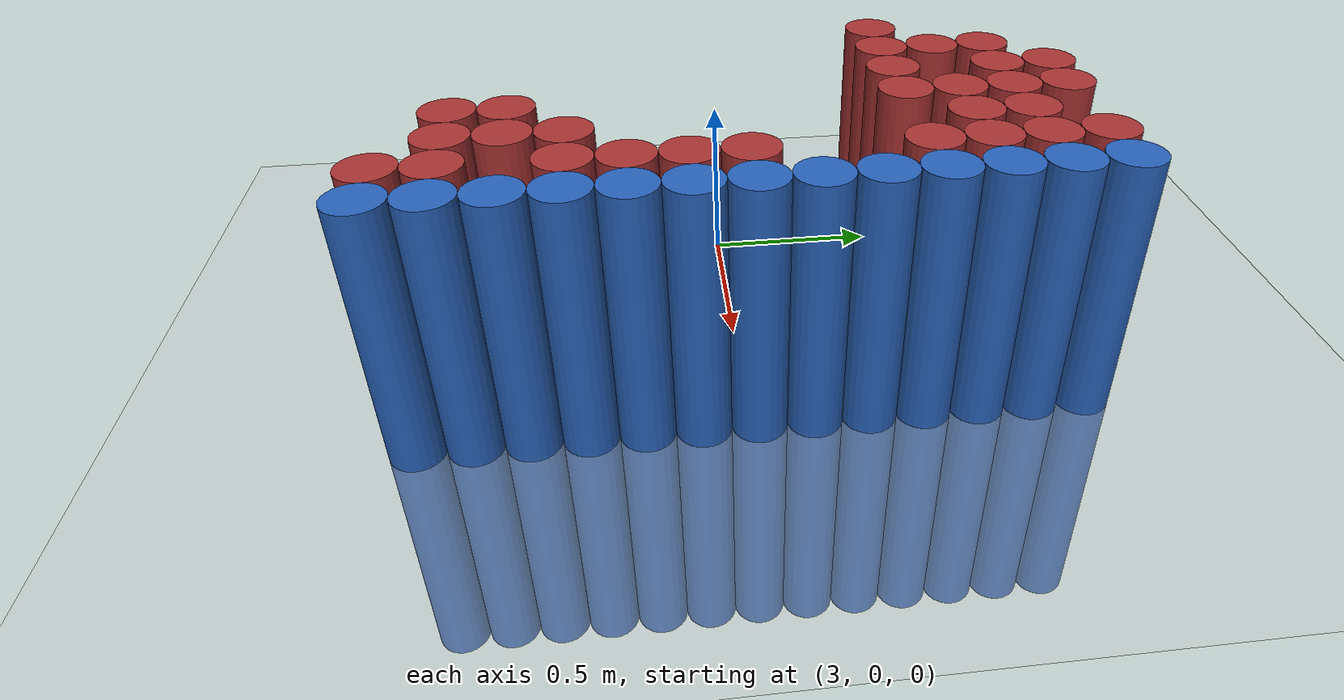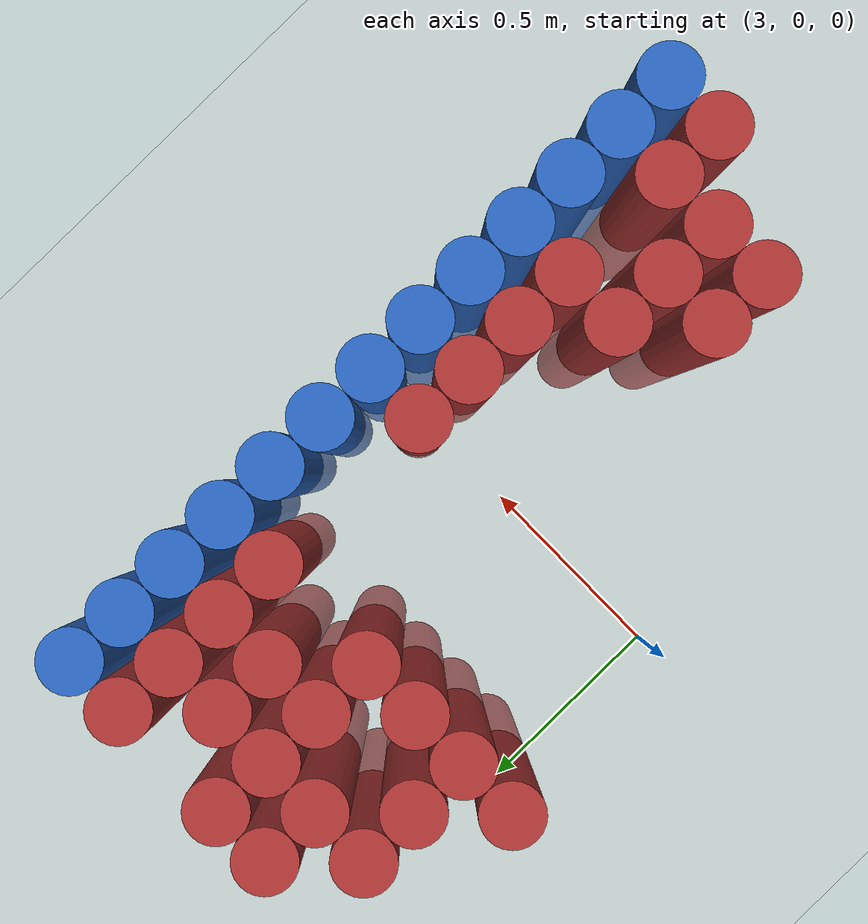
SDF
<sdf version="1.6">
 <world name="default">
  <model name="ground_plane">
   <static>1</static>
   <link name="link">
    <collision name="collision">
     <geometry><plane><normal>0 0 1</normal><size>100 100</size></plane></geometry>
     <surface><friction><ode><mu>100</mu><mu2>50</mu2></ode></friction></surface>
    </collision>
    <visual name="visual">
     <cast_shadows>0</cast_shadows>
     <geometry><plane><normal>0 0 1</normal><size>100 100</size></plane></geometry>
     <material>
      <script><uri>file://media/materials/scripts/gazebo.material</uri><name>Gazebo/Grey</name></script>
     </material>
    </visual>
   </link>
  </model>
  <model name="unit_cylinder_102">
   <static>1</static>
   <pose>3.925000 -0.875000 0.000000 0.000000 0.000000 0.000000</pose>
   <link name="link">
    <inertial>
     <mass>1</mass>
     <inertia><ixx>0.145833</ixx><ixy>0</ixy><ixz>0</ixz><iyy>0.145833</iyy><iyz>0</iyz><izz>0.125</izz></inertia>
    </inertial>
    <collision name="collision">
     <geometry><cylinder><radius>0.075000</radius><length>1.5</length></cylinder></geometry>
    </collision>
    <visual name="visual">
     <geometry><cylinder><radius>0.075000</radius><length>1.5</length></cylinder></geometry>
     <material>
      <ambient>0.152000 0.379000 0.720000 1</ambient>
      <diffuse>0.152000 0.379000 0.720000 1</diffuse>
     </material>
     <material>
      <script><name>Gazebo/Grey</name><uri>file://media/materials/scripts/gazebo.material</uri></script>
     </material>
    </visual>
   </link>
  </model>
  <model name="unit_cylinder_104">
   <static>1</static>
   <pose>3.925000 -0.725000 0.000000 0.000000 0.000000 0.000000</pose>
   <link name="link">
    <inertial>
     <mass>1</mass>
     <inertia><ixx>0.145833</ixx><ixy>0</ixy><ixz>0</ixz><iyy>0.145833</iyy><iyz>0</iyz><izz>0.125</izz></inertia>
    </inertial>
    <collision name="collision">
     <geometry><cylinder><radius>0.075000</radius><length>1.5</length></cylinder></geometry>
    </collision>
    <visual name="visual">
     <geometry><cylinder><radius>0.075000</radius><length>1.5</length></cylinder></geometry>
     <material>
      <ambient>0.152000 0.379000 0.720000 1</ambient>
      <diffuse>0.152000 0.379000 0.720000 1</diffuse>
     </material>
     <material>
      <script><name>Gazebo/Grey</name><uri>file://media/materials/scripts/gazebo.material</uri></script>
     </material>
    </visual>
   </link>
  </model>
  <model name="unit_cylinder_106">
   <static>1</static>
   <pose>3.925000 -0.575000 0.000000 0.000000 0.000000 0.000000</pose>
   <link name="link">
    <inertial>
     <mass>1</mass>
     <inertia><ixx>0.145833</ixx><ixy>0</ixy><ixz>0</ixz><iyy>0.145833</iyy><iyz>0</iyz><izz>0.125</izz></inertia>
    </inertial>
    <collision name="collision">
     <geometry><cylinder><radius>0.075000</radius><length>1.5</length></cylinder></geometry>
    </collision>
    <visual name="visual">
     <geometry><cylinder><radius>0.075000</radius><length>1.5</length></cylinder></geometry>
     <material>
      <ambient>0.152000 0.379000 0.720000 1</ambient>
      <diffuse>0.152000 0.379000 0.720000 1</diffuse>
     </material>
     <material>
      <script><name>Gazebo/Grey</name><uri>file://media/materials/scripts/gazebo.material</uri></script>
     </material>
    </visual>
   </link>
  </model>
  <model name="unit_cylinder_108">
   <static>1</static>
   <pose>3.925000 -0.425000 0.000000 0.000000 0.000000 0.000000</pose>
   <link name="link">
    <inertial>
     <mass>1</mass>
     <inertia><ixx>0.145833</ixx><ixy>0</ixy><ixz>0</ixz><iyy>0.145833</iyy><iyz>0</iyz><izz>0.125</izz></inertia>
    </inertial>
    <collision name="collision">
     <geometry><cylinder><radius>0.075000</radius><length>1.5</length></cylinder></geometry>
    </collision>
    <visual name="visual">
     <geometry><cylinder><radius>0.075000</radius><length>1.5</length></cylinder></geometry>
     <material>
      <ambient>0.152000 0.379000 0.720000 1</ambient>
      <diffuse>0.152000 0.379000 0.720000 1</diffuse>
     </material>
     <material>
      <script><name>Gazebo/Grey</name><uri>file://media/materials/scripts/gazebo.material</uri></script>
     </material>
    </visual>
   </link>
  </model>
  <model name="unit_cylinder_110">
   <static>1</static>
   <pose>3.925000 -0.275000 0.000000 0.000000 0.000000 0.000000</pose>
   <link name="link">
    <inertial>
     <mass>1</mass>
     <inertia><ixx>0.145833</ixx><ixy>0</ixy><ixz>0</ixz><iyy>0.145833</iyy><iyz>0</iyz><izz>0.125</izz></inertia>
    </inertial>
    <collision name="collision">
     <geometry><cylinder><radius>0.075000</radius><length>1.5</length></cylinder></geometry>
    </collision>
    <visual name="visual">
     <geometry><cylinder><radius>0.075000</radius><length>1.5</length></cylinder></geometry>
     <material>
      <ambient>0.152000 0.379000 0.720000 1</ambient>
      <diffuse>0.152000 0.379000 0.720000 1</diffuse>
     </material>
     <material>
      <script><name>Gazebo/Grey</name><uri>file://media/materials/scripts/gazebo.material</uri></script>
     </material>
    </visual>
   </link>
  </model>
  <model name="unit_cylinder_112">
   <static>1</static>
   <pose>3.925000 -0.125000 0.000000 0.000000 0.000000 0.000000</pose>
   <link name="link">
    <inertial>
     <mass>1</mass>
     <inertia><ixx>0.145833</ixx><ixy>0</ixy><ixz>0</ixz><iyy>0.145833</iyy><iyz>0</iyz><izz>0.125</izz></inertia>
    </inertial>
    <collision name="collision">
     <geometry><cylinder><radius>0.075000</radius><length>1.5</length></cylinder></geometry>
    </collision>
    <visual name="visual">
     <geometry><cylinder><radius>0.075000</radius><length>1.5</length></cylinder></geometry>
     <material>
      <ambient>0.152000 0.379000 0.720000 1</ambient>
      <diffuse>0.152000 0.379000 0.720000 1</diffuse>
     </material>
     <material>
      <script><name>Gazebo/Grey</name><uri>file://media/materials/scripts/gazebo.material</uri></script>
     </material>
    </visual>
   </link>
  </model>
  <model name="unit_cylinder_114">
   <static>1</static>
   <pose>3.925000 0.025000 0.000000 0.000000 0.000000 0.000000</pose>
   <link name="link">
    <inertial>
     <mass>1</mass>
     <inertia><ixx>0.145833</ixx><ixy>0</ixy><ixz>0</ixz><iyy>0.145833</iyy><iyz>0</iyz><izz>0.125</izz></inertia>
    </inertial>
    <collision name="collision">
     <geometry><cylinder><radius>0.075000</radius><length>1.5</length></cylinder></geometry>
    </collision>
    <visual name="visual">
     <geometry><cylinder><radius>0.075000</radius><length>1.5</length></cylinder></geometry>
     <material>
      <ambient>0.152000 0.379000 0.720000 1</ambient>
      <diffuse>0.152000 0.379000 0.720000 1</diffuse>
     </material>
     <material>
      <script><name>Gazebo/Grey</name><uri>file://media/materials/scripts/gazebo.material</uri></script>
     </material>
    </visual>
   </link>
  </model>
  <model name="unit_cylinder_116">
   <static>1</static>
   <pose>3.925000 0.175000 0.000000 0.000000 0.000000 0.000000</pose>
   <link name="link">
    <inertial>
     <mass>1</mass>
     <inertia><ixx>0.145833</ixx><ixy>0</ixy><ixz>0</ixz><iyy>0.145833</iyy><iyz>0</iyz><izz>0.125</izz></inertia>
    </inertial>
    <collision name="collision">
     <geometry><cylinder><radius>0.075000</radius><length>1.5</length></cylinder></geometry>
    </collision>
    <visual name="visual">
     <geometry><cylinder><radius>0.075000</radius><length>1.5</length></cylinder></geometry>
     <material>
      <ambient>0.152000 0.379000 0.720000 1</ambient>
      <diffuse>0.152000 0.379000 0.720000 1</diffuse>
     </material>
     <material>
      <script><name>Gazebo/Grey</name><uri>file://media/materials/scripts/gazebo.material</uri></script>
     </material>
    </visual>
   </link>
  </model>
  <model name="unit_cylinder_118">
   <static>1</static>
   <pose>3.925000 0.325000 0.000000 0.000000 0.000000 0.000000</pose>
   <link name="link">
    <inertial>
     <mass>1</mass>
     <inertia><ixx>0.145833</ixx><ixy>0</ixy><ixz>0</ixz><iyy>0.145833</iyy><iyz>0</iyz><izz>0.125</izz></inertia>
    </inertial>
    <collision name="collision">
     <geometry><cylinder><radius>0.075000</radius><length>1.5</length></cylinder></geometry>
    </collision>
    <visual name="visual">
     <geometry><cylinder><radius>0.075000</radius><length>1.5</length></cylinder></geometry>
     <material>
      <ambient>0.152000 0.379000 0.720000 1</ambient>
      <diffuse>0.152000 0.379000 0.720000 1</diffuse>
     </material>
     <material>
      <script><name>Gazebo/Grey</name><uri>file://media/materials/scripts/gazebo.material</uri></script>
     </material>
    </visual>
   </link>
  </model>
  <model name="unit_cylinder_120">
   <static>1</static>
   <pose>3.925000 0.475000 0.000000 0.000000 0.000000 0.000000</pose>
   <link name="link">
    <inertial>
     <mass>1</mass>
     <inertia><ixx>0.145833</ixx><ixy>0</ixy><ixz>0</ixz><iyy>0.145833</iyy><iyz>0</iyz><izz>0.125</izz></inertia>
    </inertial>
    <collision name="collision">
     <geometry><cylinder><radius>0.075000</radius><length>1.5</length></cylinder></geometry>
    </collision>
    <visual name="visual">
     <geometry><cylinder><radius>0.075000</radius><length>1.5</length></cylinder></geometry>
     <material>
      <ambient>0.152000 0.379000 0.720000 1</ambient>
      <diffuse>0.152000 0.379000 0.720000 1</diffuse>
     </material>
     <material>
      <script><name>Gazebo/Grey</name><uri>file://media/materials/scripts/gazebo.material</uri></script>
     </material>
    </visual>
   </link>
  </model>
  <model name="unit_cylinder_122">
   <static>1</static>
   <pose>3.925000 0.625000 0.000000 0.000000 0.000000 0.000000</pose>
   <link name="link">
    <inertial>
     <mass>1</mass>
     <inertia><ixx>0.145833</ixx><ixy>0</ixy><ixz>0</ixz><iyy>0.145833</iyy><iyz>0</iyz><izz>0.125</izz></inertia>
    </inertial>
    <collision name="collision">
     <geometry><cylinder><radius>0.075000</radius><length>1.5</length></cylinder></geometry>
    </collision>
    <visual name="visual">
     <geometry><cylinder><radius>0.075000</radius><length>1.5</length></cylinder></geometry>
     <material>
      <ambient>0.152000 0.379000 0.720000 1</ambient>
      <diffuse>0.152000 0.379000 0.720000 1</diffuse>
     </material>
     <material>
      <script><name>Gazebo/Grey</name><uri>file://media/materials/scripts/gazebo.material</uri></script>
     </material>
    </visual>
   </link>
  </model>
  <model name="unit_cylinder_124">
   <static>1</static>
   <pose>3.925000 0.775000 0.000000 0.000000 0.000000 0.000000</pose>
   <link name="link">
    <inertial>
     <mass>1</mass>
     <inertia><ixx>0.145833</ixx><ixy>0</ixy><ixz>0</ixz><iyy>0.145833</iyy><iyz>0</iyz><izz>0.125</izz></inertia>
    </inertial>
    <collision name="collision">
     <geometry><cylinder><radius>0.075000</radius><length>1.5</length></cylinder></geometry>
    </collision>
    <visual name="visual">
     <geometry><cylinder><radius>0.075000</radius><length>1.5</length></cylinder></geometry>
     <material>
      <ambient>0.152000 0.379000 0.720000 1</ambient>
      <diffuse>0.152000 0.379000 0.720000 1</diffuse>
     </material>
     <material>
      <script><name>Gazebo/Grey</name><uri>file://media/materials/scripts/gazebo.material</uri></script>
     </material>
    </visual>
   </link>
  </model>
  <model name="unit_cylinder_126">
   <static>1</static>
   <pose>3.925000 0.925000 0.000000 0.000000 0.000000 0.000000</pose>
   <link name="link">
    <inertial>
     <mass>1</mass>
     <inertia><ixx>0.145833</ixx><ixy>0</ixy><ixz>0</ixz><iyy>0.145833</iyy><iyz>0</iyz><izz>0.125</izz></inertia>
    </inertial>
    <collision name="collision">
     <geometry><cylinder><radius>0.075000</radius><length>1.5</length></cylinder></geometry>
    </collision>
    <visual name="visual">
     <geometry><cylinder><radius>0.075000</radius><length>1.5</length></cylinder></geometry>
     <material>
      <ambient>0.152000 0.379000 0.720000 1</ambient>
      <diffuse>0.152000 0.379000 0.720000 1</diffuse>
     </material>
     <material>
      <script><name>Gazebo/Grey</name><uri>file://media/materials/scripts/gazebo.material</uri></script>
     </material>
    </visual>
   </link>
  </model>
  <model name="unit_cylinder_340">
   <static>1</static>
   <pose>3.025000 0.475000 0.000000 0.000000 0.000000 0.000000</pose>
   <link name="link">
    <inertial>
     <mass>1</mass>
     <inertia><ixx>0.145833</ixx><ixy>0</ixy><ixz>0</ixz><iyy>0.145833</iyy><iyz>0</iyz><izz>0.125</izz></inertia>
    </inertial>
    <collision name="collision">
     <geometry><cylinder><radius>0.075000</radius><length>1.5</length></cylinder></geometry>
    </collision>
    <visual name="visual">
     <geometry><cylinder><radius>0.075000</radius><length>1.5</length></cylinder></geometry>
     <material>
      <ambient>0.648000 0.192000 0.192000 1</ambient>
      <diffuse>0.648000 0.192000 0.192000 1</diffuse>
     </material>
     <material>
      <script><name>Gazebo/Grey</name><uri>file://media/materials/scripts/gazebo.material</uri></script>
     </material>
    </visual>
   </link>
  </model>
  <model name="unit_cylinder_341">
   <static>1</static>
   <pose>3.175000 0.475000 0.000000 0.000000 0.000000 0.000000</pose>
   <link name="link">
    <inertial>
     <mass>1</mass>
     <inertia><ixx>0.145833</ixx><ixy>0</ixy><ixz>0</ixz><iyy>0.145833</iyy><iyz>0</iyz><izz>0.125</izz></inertia>
    </inertial>
    <collision name="collision">
     <geometry><cylinder><radius>0.075000</radius><length>1.5</length></cylinder></geometry>
    </collision>
    <visual name="visual">
     <geometry><cylinder><radius>0.075000</radius><length>1.5</length></cylinder></geometry>
     <material>
      <ambient>0.648000 0.192000 0.192000 1</ambient>
      <diffuse>0.648000 0.192000 0.192000 1</diffuse>
     </material>
     <material>
      <script><name>Gazebo/Grey</name><uri>file://media/materials/scripts/gazebo.material</uri></script>
     </material>
    </visual>
   </link>
  </model>
  <model name="unit_cylinder_342">
   <static>1</static>
   <pose>3.175000 0.625000 0.000000 0.000000 0.000000 0.000000</pose>
   <link name="link">
    <inertial>
     <mass>1</mass>
     <inertia><ixx>0.145833</ixx><ixy>0</ixy><ixz>0</ixz><iyy>0.145833</iyy><iyz>0</iyz><izz>0.125</izz></inertia>
    </inertial>
    <collision name="collision">
     <geometry><cylinder><radius>0.075000</radius><length>1.5</length></cylinder></geometry>
    </collision>
    <visual name="visual">
     <geometry><cylinder><radius>0.075000</radius><length>1.5</length></cylinder></geometry>
     <material>
      <ambient>0.648000 0.192000 0.192000 1</ambient>
      <diffuse>0.648000 0.192000 0.192000 1</diffuse>
     </material>
     <material>
      <script><name>Gazebo/Grey</name><uri>file://media/materials/scripts/gazebo.material</uri></script>
     </material>
    </visual>
   </link>
  </model>
  <model name="unit_cylinder_343">
   <static>1</static>
   <pose>3.175000 0.775000 0.000000 0.000000 0.000000 0.000000</pose>
   <link name="link">
    <inertial>
     <mass>1</mass>
     <inertia><ixx>0.145833</ixx><ixy>0</ixy><ixz>0</ixz><iyy>0.145833</iyy><iyz>0</iyz><izz>0.125</izz></inertia>
    </inertial>
    <collision name="collision">
     <geometry><cylinder><radius>0.075000</radius><length>1.5</length></cylinder></geometry>
    </collision>
    <visual name="visual">
     <geometry><cylinder><radius>0.075000</radius><length>1.5</length></cylinder></geometry>
     <material>
      <ambient>0.648000 0.192000 0.192000 1</ambient>
      <diffuse>0.648000 0.192000 0.192000 1</diffuse>
     </material>
     <material>
      <script><name>Gazebo/Grey</name><uri>file://media/materials/scripts/gazebo.material</uri></script>
     </material>
    </visual>
   </link>
  </model>
  <model name="unit_cylinder_344">
   <static>1</static>
   <pose>3.325000 0.475000 0.000000 0.000000 0.000000 0.000000</pose>
   <link name="link">
    <inertial>
     <mass>1</mass>
     <inertia><ixx>0.145833</ixx><ixy>0</ixy><ixz>0</ixz><iyy>0.145833</iyy><iyz>0</iyz><izz>0.125</izz></inertia>
    </inertial>
    <collision name="collision">
     <geometry><cylinder><radius>0.075000</radius><length>1.5</length></cylinder></geometry>
    </collision>
    <visual name="visual">
     <geometry><cylinder><radius>0.075000</radius><length>1.5</length></cylinder></geometry>
     <material>
      <ambient>0.648000 0.192000 0.192000 1</ambient>
      <diffuse>0.648000 0.192000 0.192000 1</diffuse>
     </material>
     <material>
      <script><name>Gazebo/Grey</name><uri>file://media/materials/scripts/gazebo.material</uri></script>
     </material>
    </visual>
   </link>
  </model>
  <model name="unit_cylinder_345">
   <static>1</static>
   <pose>3.325000 0.775000 0.000000 0.000000 0.000000 0.000000</pose>
   <link name="link">
    <inertial>
     <mass>1</mass>
     <inertia><ixx>0.145833</ixx><ixy>0</ixy><ixz>0</ixz><iyy>0.145833</iyy><iyz>0</iyz><izz>0.125</izz></inertia>
    </inertial>
    <collision name="collision">
     <geometry><cylinder><radius>0.075000</radius><length>1.5</length></cylinder></geometry>
    </collision>
    <visual name="visual">
     <geometry><cylinder><radius>0.075000</radius><length>1.5</length></cylinder></geometry>
     <material>
      <ambient>0.648000 0.192000 0.192000 1</ambient>
      <diffuse>0.648000 0.192000 0.192000 1</diffuse>
     </material>
     <material>
      <script><name>Gazebo/Grey</name><uri>file://media/materials/scripts/gazebo.material</uri></script>
     </material>
    </visual>
   </link>
  </model>
  <model name="unit_cylinder_346">
   <static>1</static>
   <pose>3.325000 0.925000 0.000000 0.000000 0.000000 0.000000</pose>
   <link name="link">
    <inertial>
     <mass>1</mass>
     <inertia><ixx>0.145833</ixx><ixy>0</ixy><ixz>0</ixz><iyy>0.145833</iyy><iyz>0</iyz><izz>0.125</izz></inertia>
    </inertial>
    <collision name="collision">
     <geometry><cylinder><radius>0.075000</radius><length>1.5</length></cylinder></geometry>
    </collision>
    <visual name="visual">
     <geometry><cylinder><radius>0.075000</radius><length>1.5</length></cylinder></geometry>
     <material>
      <ambient>0.648000 0.192000 0.192000 1</ambient>
      <diffuse>0.648000 0.192000 0.192000 1</diffuse>
     </material>
     <material>
      <script><name>Gazebo/Grey</name><uri>file://media/materials/scripts/gazebo.material</uri></script>
     </material>
    </visual>
   </link>
  </model>
  <model name="unit_cylinder_347">
   <static>1</static>
   <pose>3.475000 -0.725000 0.000000 0.000000 0.000000 0.000000</pose>
   <link name="link">
    <inertial>
     <mass>1</mass>
     <inertia><ixx>0.145833</ixx><ixy>0</ixy><ixz>0</ixz><iyy>0.145833</iyy><iyz>0</iyz><izz>0.125</izz></inertia>
    </inertial>
    <collision name="collision">
     <geometry><cylinder><radius>0.075000</radius><length>1.5</length></cylinder></geometry>
    </collision>
    <visual name="visual">
     <geometry><cylinder><radius>0.075000</radius><length>1.5</length></cylinder></geometry>
     <material>
      <ambient>0.648000 0.192000 0.192000 1</ambient>
      <diffuse>0.648000 0.192000 0.192000 1</diffuse>
     </material>
     <material>
      <script><name>Gazebo/Grey</name><uri>file://media/materials/scripts/gazebo.material</uri></script>
     </material>
    </visual>
   </link>
  </model>
  <model name="unit_cylinder_348">
   <static>1</static>
   <pose>3.475000 -0.575000 0.000000 0.000000 0.000000 0.000000</pose>
   <link name="link">
    <inertial>
     <mass>1</mass>
     <inertia><ixx>0.145833</ixx><ixy>0</ixy><ixz>0</ixz><iyy>0.145833</iyy><iyz>0</iyz><izz>0.125</izz></inertia>
    </inertial>
    <collision name="collision">
     <geometry><cylinder><radius>0.075000</radius><length>1.5</length></cylinder></geometry>
    </collision>
    <visual name="visual">
     <geometry><cylinder><radius>0.075000</radius><length>1.5</length></cylinder></geometry>
     <material>
      <ambient>0.648000 0.192000 0.192000 1</ambient>
      <diffuse>0.648000 0.192000 0.192000 1</diffuse>
     </material>
     <material>
      <script><name>Gazebo/Grey</name><uri>file://media/materials/scripts/gazebo.material</uri></script>
     </material>
    </visual>
   </link>
  </model>
  <model name="unit_cylinder_349">
   <static>1</static>
   <pose>3.475000 0.475000 0.000000 0.000000 0.000000 0.000000</pose>
   <link name="link">
    <inertial>
     <mass>1</mass>
     <inertia><ixx>0.145833</ixx><ixy>0</ixy><ixz>0</ixz><iyy>0.145833</iyy><iyz>0</iyz><izz>0.125</izz></inertia>
    </inertial>
    <collision name="collision">
     <geometry><cylinder><radius>0.075000</radius><length>1.5</length></cylinder></geometry>
    </collision>
    <visual name="visual">
     <geometry><cylinder><radius>0.075000</radius><length>1.5</length></cylinder></geometry>
     <material>
      <ambient>0.648000 0.192000 0.192000 1</ambient>
      <diffuse>0.648000 0.192000 0.192000 1</diffuse>
     </material>
     <material>
      <script><name>Gazebo/Grey</name><uri>file://media/materials/scripts/gazebo.material</uri></script>
     </material>
    </visual>
   </link>
  </model>
  <model name="unit_cylinder_350">
   <static>1</static>
   <pose>3.475000 0.625000 0.000000 0.000000 0.000000 0.000000</pose>
   <link name="link">
    <inertial>
     <mass>1</mass>
     <inertia><ixx>0.145833</ixx><ixy>0</ixy><ixz>0</ixz><iyy>0.145833</iyy><iyz>0</iyz><izz>0.125</izz></inertia>
    </inertial>
    <collision name="collision">
     <geometry><cylinder><radius>0.075000</radius><length>1.5</length></cylinder></geometry>
    </collision>
    <visual name="visual">
     <geometry><cylinder><radius>0.075000</radius><length>1.5</length></cylinder></geometry>
     <material>
      <ambient>0.648000 0.192000 0.192000 1</ambient>
      <diffuse>0.648000 0.192000 0.192000 1</diffuse>
     </material>
     <material>
      <script><name>Gazebo/Grey</name><uri>file://media/materials/scripts/gazebo.material</uri></script>
     </material>
    </visual>
   </link>
  </model>
  <model name="unit_cylinder_351">
   <static>1</static>
   <pose>3.475000 0.775000 0.000000 0.000000 0.000000 0.000000</pose>
   <link name="link">
    <inertial>
     <mass>1</mass>
     <inertia><ixx>0.145833</ixx><ixy>0</ixy><ixz>0</ixz><iyy>0.145833</iyy><iyz>0</iyz><izz>0.125</izz></inertia>
    </inertial>
    <collision name="collision">
     <geometry><cylinder><radius>0.075000</radius><length>1.5</length></cylinder></geometry>
    </collision>
    <visual name="visual">
     <geometry><cylinder><radius>0.075000</radius><length>1.5</length></cylinder></geometry>
     <material>
      <ambient>0.648000 0.192000 0.192000 1</ambient>
      <diffuse>0.648000 0.192000 0.192000 1</diffuse>
     </material>
     <material>
      <script><name>Gazebo/Grey</name><uri>file://media/materials/scripts/gazebo.material</uri></script>
     </material>
    </visual>
   </link>
  </model>
  <model name="unit_cylinder_352">
   <static>1</static>
   <pose>3.475000 0.925000 0.000000 0.000000 0.000000 0.000000</pose>
   <link name="link">
    <inertial>
     <mass>1</mass>
     <inertia><ixx>0.145833</ixx><ixy>0</ixy><ixz>0</ixz><iyy>0.145833</iyy><iyz>0</iyz><izz>0.125</izz></inertia>
    </inertial>
    <collision name="collision">
     <geometry><cylinder><radius>0.075000</radius><length>1.5</length></cylinder></geometry>
    </collision>
    <visual name="visual">
     <geometry><cylinder><radius>0.075000</radius><length>1.5</length></cylinder></geometry>
     <material>
      <ambient>0.648000 0.192000 0.192000 1</ambient>
      <diffuse>0.648000 0.192000 0.192000 1</diffuse>
     </material>
     <material>
      <script><name>Gazebo/Grey</name><uri>file://media/materials/scripts/gazebo.material</uri></script>
     </material>
    </visual>
   </link>
  </model>
  <model name="unit_cylinder_353">
   <static>1</static>
   <pose>3.625000 -0.725000 0.000000 0.000000 0.000000 0.000000</pose>
   <link name="link">
    <inertial>
     <mass>1</mass>
     <inertia><ixx>0.145833</ixx><ixy>0</ixy><ixz>0</ixz><iyy>0.145833</iyy><iyz>0</iyz><izz>0.125</izz></inertia>
    </inertial>
    <collision name="collision">
     <geometry><cylinder><radius>0.075000</radius><length>1.5</length></cylinder></geometry>
    </collision>
    <visual name="visual">
     <geometry><cylinder><radius>0.075000</radius><length>1.5</length></cylinder></geometry>
     <material>
      <ambient>0.648000 0.192000 0.192000 1</ambient>
      <diffuse>0.648000 0.192000 0.192000 1</diffuse>
     </material>
     <material>
      <script><name>Gazebo/Grey</name><uri>file://media/materials/scripts/gazebo.material</uri></script>
     </material>
    </visual>
   </link>
  </model>
  <model name="unit_cylinder_354">
   <static>1</static>
   <pose>3.625000 -0.575000 0.000000 0.000000 0.000000 0.000000</pose>
   <link name="link">
    <inertial>
     <mass>1</mass>
     <inertia><ixx>0.145833</ixx><ixy>0</ixy><ixz>0</ixz><iyy>0.145833</iyy><iyz>0</iyz><izz>0.125</izz></inertia>
    </inertial>
    <collision name="collision">
     <geometry><cylinder><radius>0.075000</radius><length>1.5</length></cylinder></geometry>
    </collision>
    <visual name="visual">
     <geometry><cylinder><radius>0.075000</radius><length>1.5</length></cylinder></geometry>
     <material>
      <ambient>0.648000 0.192000 0.192000 1</ambient>
      <diffuse>0.648000 0.192000 0.192000 1</diffuse>
     </material>
     <material>
      <script><name>Gazebo/Grey</name><uri>file://media/materials/scripts/gazebo.material</uri></script>
     </material>
    </visual>
   </link>
  </model>
  <model name="unit_cylinder_355">
   <static>1</static>
   <pose>3.625000 -0.425000 0.000000 0.000000 0.000000 0.000000</pose>
   <link name="link">
    <inertial>
     <mass>1</mass>
     <inertia><ixx>0.145833</ixx><ixy>0</ixy><ixz>0</ixz><iyy>0.145833</iyy><iyz>0</iyz><izz>0.125</izz></inertia>
    </inertial>
    <collision name="collision">
     <geometry><cylinder><radius>0.075000</radius><length>1.5</length></cylinder></geometry>
    </collision>
    <visual name="visual">
     <geometry><cylinder><radius>0.075000</radius><length>1.5</length></cylinder></geometry>
     <material>
      <ambient>0.648000 0.192000 0.192000 1</ambient>
      <diffuse>0.648000 0.192000 0.192000 1</diffuse>
     </material>
     <material>
      <script><name>Gazebo/Grey</name><uri>file://media/materials/scripts/gazebo.material</uri></script>
     </material>
    </visual>
   </link>
  </model>
  <model name="unit_cylinder_356">
   <static>1</static>
   <pose>3.625000 0.625000 0.000000 0.000000 0.000000 0.000000</pose>
   <link name="link">
    <inertial>
     <mass>1</mass>
     <inertia><ixx>0.145833</ixx><ixy>0</ixy><ixz>0</ixz><iyy>0.145833</iyy><iyz>0</iyz><izz>0.125</izz></inertia>
    </inertial>
    <collision name="collision">
     <geometry><cylinder><radius>0.075000</radius><length>1.5</length></cylinder></geometry>
    </collision>
    <visual name="visual">
     <geometry><cylinder><radius>0.075000</radius><length>1.5</length></cylinder></geometry>
     <material>
      <ambient>0.648000 0.192000 0.192000 1</ambient>
      <diffuse>0.648000 0.192000 0.192000 1</diffuse>
     </material>
     <material>
      <script><name>Gazebo/Grey</name><uri>file://media/materials/scripts/gazebo.material</uri></script>
     </material>
    </visual>
   </link>
  </model>
  <model name="unit_cylinder_357">
   <static>1</static>
   <pose>3.625000 0.775000 0.000000 0.000000 0.000000 0.000000</pose>
   <link name="link">
    <inertial>
     <mass>1</mass>
     <inertia><ixx>0.145833</ixx><ixy>0</ixy><ixz>0</ixz><iyy>0.145833</iyy><iyz>0</iyz><izz>0.125</izz></inertia>
    </inertial>
    <collision name="collision">
     <geometry><cylinder><radius>0.075000</radius><length>1.5</length></cylinder></geometry>
    </collision>
    <visual name="visual">
     <geometry><cylinder><radius>0.075000</radius><length>1.5</length></cylinder></geometry>
     <material>
      <ambient>0.648000 0.192000 0.192000 1</ambient>
      <diffuse>0.648000 0.192000 0.192000 1</diffuse>
     </material>
     <material>
      <script><name>Gazebo/Grey</name><uri>file://media/materials/scripts/gazebo.material</uri></script>
     </material>
    </visual>
   </link>
  </model>
  <model name="unit_cylinder_362">
   <static>1</static>
   <pose>3.775000 -0.875000 0.000000 0.000000 0.000000 0.000000</pose>
   <link name="link">
    <inertial>
     <mass>1</mass>
     <inertia><ixx>0.145833</ixx><ixy>0</ixy><ixz>0</ixz><iyy>0.145833</iyy><iyz>0</iyz><izz>0.125</izz></inertia>
    </inertial>
    <collision name="collision">
     <geometry><cylinder><radius>0.075000</radius><length>1.5</length></cylinder></geometry>
    </collision>
    <visual name="visual">
     <geometry><cylinder><radius>0.075000</radius><length>1.5</length></cylinder></geometry>
     <material>
      <ambient>0.648000 0.192000 0.192000 1</ambient>
      <diffuse>0.648000 0.192000 0.192000 1</diffuse>
     </material>
     <material>
      <script><name>Gazebo/Grey</name><uri>file://media/materials/scripts/gazebo.material</uri></script>
     </material>
    </visual>
   </link>
  </model>
  <model name="unit_cylinder_363">
   <static>1</static>
   <pose>3.775000 -0.725000 0.000000 0.000000 0.000000 0.000000</pose>
   <link name="link">
    <inertial>
     <mass>1</mass>
     <inertia><ixx>0.145833</ixx><ixy>0</ixy><ixz>0</ixz><iyy>0.145833</iyy><iyz>0</iyz><izz>0.125</izz></inertia>
    </inertial>
    <collision name="collision">
     <geometry><cylinder><radius>0.075000</radius><length>1.5</length></cylinder></geometry>
    </collision>
    <visual name="visual">
     <geometry><cylinder><radius>0.075000</radius><length>1.5</length></cylinder></geometry>
     <material>
      <ambient>0.648000 0.192000 0.192000 1</ambient>
      <diffuse>0.648000 0.192000 0.192000 1</diffuse>
     </material>
     <material>
      <script><name>Gazebo/Grey</name><uri>file://media/materials/scripts/gazebo.material</uri></script>
     </material>
    </visual>
   </link>
  </model>
  <model name="unit_cylinder_364">
   <static>1</static>
   <pose>3.775000 -0.425000 0.000000 0.000000 0.000000 0.000000</pose>
   <link name="link">
    <inertial>
     <mass>1</mass>
     <inertia><ixx>0.145833</ixx><ixy>0</ixy><ixz>0</ixz><iyy>0.145833</iyy><iyz>0</iyz><izz>0.125</izz></inertia>
    </inertial>
    <collision name="collision">
     <geometry><cylinder><radius>0.075000</radius><length>1.5</length></cylinder></geometry>
    </collision>
    <visual name="visual">
     <geometry><cylinder><radius>0.075000</radius><length>1.5</length></cylinder></geometry>
     <material>
      <ambient>0.648000 0.192000 0.192000 1</ambient>
      <diffuse>0.648000 0.192000 0.192000 1</diffuse>
     </material>
     <material>
      <script><name>Gazebo/Grey</name><uri>file://media/materials/scripts/gazebo.material</uri></script>
     </material>
    </visual>
   </link>
  </model>
  <model name="unit_cylinder_365">
   <static>1</static>
   <pose>3.775000 -0.275000 0.000000 0.000000 0.000000 0.000000</pose>
   <link name="link">
    <inertial>
     <mass>1</mass>
     <inertia><ixx>0.145833</ixx><ixy>0</ixy><ixz>0</ixz><iyy>0.145833</iyy><iyz>0</iyz><izz>0.125</izz></inertia>
    </inertial>
    <collision name="collision">
     <geometry><cylinder><radius>0.075000</radius><length>1.5</length></cylinder></geometry>
    </collision>
    <visual name="visual">
     <geometry><cylinder><radius>0.075000</radius><length>1.5</length></cylinder></geometry>
     <material>
      <ambient>0.648000 0.192000 0.192000 1</ambient>
      <diffuse>0.648000 0.192000 0.192000 1</diffuse>
     </material>
     <material>
      <script><name>Gazebo/Grey</name><uri>file://media/materials/scripts/gazebo.material</uri></script>
     </material>
    </visual>
   </link>
  </model>
  <model name="unit_cylinder_366">
   <static>1</static>
   <pose>3.775000 -0.125000 0.000000 0.000000 0.000000 0.000000</pose>
   <link name="link">
    <inertial>
     <mass>1</mass>
     <inertia><ixx>0.145833</ixx><ixy>0</ixy><ixz>0</ixz><iyy>0.145833</iyy><iyz>0</iyz><izz>0.125</izz></inertia>
    </inertial>
    <collision name="collision">
     <geometry><cylinder><radius>0.075000</radius><length>1.5</length></cylinder></geometry>
    </collision>
    <visual name="visual">
     <geometry><cylinder><radius>0.075000</radius><length>1.5</length></cylinder></geometry>
     <material>
      <ambient>0.648000 0.192000 0.192000 1</ambient>
      <diffuse>0.648000 0.192000 0.192000 1</diffuse>
     </material>
     <material>
      <script><name>Gazebo/Grey</name><uri>file://media/materials/scripts/gazebo.material</uri></script>
     </material>
    </visual>
   </link>
  </model>
  <model name="unit_cylinder_367">
   <static>1</static>
   <pose>3.775000 0.025000 0.000000 0.000000 0.000000 0.000000</pose>
   <link name="link">
    <inertial>
     <mass>1</mass>
     <inertia><ixx>0.145833</ixx><ixy>0</ixy><ixz>0</ixz><iyy>0.145833</iyy><iyz>0</iyz><izz>0.125</izz></inertia>
    </inertial>
    <collision name="collision">
     <geometry><cylinder><radius>0.075000</radius><length>1.5</length></cylinder></geometry>
    </collision>
    <visual name="visual">
     <geometry><cylinder><radius>0.075000</radius><length>1.5</length></cylinder></geometry>
     <material>
      <ambient>0.648000 0.192000 0.192000 1</ambient>
      <diffuse>0.648000 0.192000 0.192000 1</diffuse>
     </material>
     <material>
      <script><name>Gazebo/Grey</name><uri>file://media/materials/scripts/gazebo.material</uri></script>
     </material>
    </visual>
   </link>
  </model>
  <model name="unit_cylinder_368">
   <static>1</static>
   <pose>3.775000 0.475000 0.000000 0.000000 0.000000 0.000000</pose>
   <link name="link">
    <inertial>
     <mass>1</mass>
     <inertia><ixx>0.145833</ixx><ixy>0</ixy><ixz>0</ixz><iyy>0.145833</iyy><iyz>0</iyz><izz>0.125</izz></inertia>
    </inertial>
    <collision name="collision">
     <geometry><cylinder><radius>0.075000</radius><length>1.5</length></cylinder></geometry>
    </collision>
    <visual name="visual">
     <geometry><cylinder><radius>0.075000</radius><length>1.5</length></cylinder></geometry>
     <material>
      <ambient>0.648000 0.192000 0.192000 1</ambient>
      <diffuse>0.648000 0.192000 0.192000 1</diffuse>
     </material>
     <material>
      <script><name>Gazebo/Grey</name><uri>file://media/materials/scripts/gazebo.material</uri></script>
     </material>
    </visual>
   </link>
  </model>
  <model name="unit_cylinder_369">
   <static>1</static>
   <pose>3.775000 0.625000 0.000000 0.000000 0.000000 0.000000</pose>
   <link name="link">
    <inertial>
     <mass>1</mass>
     <inertia><ixx>0.145833</ixx><ixy>0</ixy><ixz>0</ixz><iyy>0.145833</iyy><iyz>0</iyz><izz>0.125</izz></inertia>
    </inertial>
    <collision name="collision">
     <geometry><cylinder><radius>0.075000</radius><length>1.5</length></cylinder></geometry>
    </collision>
    <visual name="visual">
     <geometry><cylinder><radius>0.075000</radius><length>1.5</length></cylinder></geometry>
     <material>
      <ambient>0.648000 0.192000 0.192000 1</ambient>
      <diffuse>0.648000 0.192000 0.192000 1</diffuse>
     </material>
     <material>
      <script><name>Gazebo/Grey</name><uri>file://media/materials/scripts/gazebo.material</uri></script>
     </material>
    </visual>
   </link>
  </model>
  <model name="unit_cylinder_370">
   <static>1</static>
   <pose>3.775000 0.775000 0.000000 0.000000 0.000000 0.000000</pose>
   <link name="link">
    <inertial>
     <mass>1</mass>
     <inertia><ixx>0.145833</ixx><ixy>0</ixy><ixz>0</ixz><iyy>0.145833</iyy><iyz>0</iyz><izz>0.125</izz></inertia>
    </inertial>
    <collision name="collision">
     <geometry><cylinder><radius>0.075000</radius><length>1.5</length></cylinder></geometry>
    </collision>
    <visual name="visual">
     <geometry><cylinder><radius>0.075000</radius><length>1.5</length></cylinder></geometry>
     <material>
      <ambient>0.648000 0.192000 0.192000 1</ambient>
      <diffuse>0.648000 0.192000 0.192000 1</diffuse>
     </material>
     <material>
      <script><name>Gazebo/Grey</name><uri>file://media/materials/scripts/gazebo.material</uri></script>
     </material>
    </visual>
   </link>
  </model>
  <model name="unit_cylinder_371">
   <static>1</static>
   <pose>3.775000 0.925000 0.000000 0.000000 0.000000 0.000000</pose>
   <link name="link">
    <inertial>
     <mass>1</mass>
     <inertia><ixx>0.145833</ixx><ixy>0</ixy><ixz>0</ixz><iyy>0.145833</iyy><iyz>0</iyz><izz>0.125</izz></inertia>
    </inertial>
    <collision name="collision">
     <geometry><cylinder><radius>0.075000</radius><length>1.5</length></cylinder></geometry>
    </collision>
    <visual name="visual">
     <geometry><cylinder><radius>0.075000</radius><length>1.5</length></cylinder></geometry>
     <material>
      <ambient>0.648000 0.192000 0.192000 1</ambient>
      <diffuse>0.648000 0.192000 0.192000 1</diffuse>
     </material>
     <material>
      <script><name>Gazebo/Grey</name><uri>file://media/materials/scripts/gazebo.material</uri></script>
     </material>
    </visual>
   </link>
  </model>
  <model name="unit_cylinder_387">
   <static>1</static>
   <pose>3.925000 -0.875000 0.000000 0.000000 0.000000 0.000000</pose>
   <link name="link">
    <inertial>
     <mass>1</mass>
     <inertia><ixx>0.145833</ixx><ixy>0</ixy><ixz>0</ixz><iyy>0.145833</iyy><iyz>0</iyz><izz>0.125</izz></inertia>
    </inertial>
    <collision name="collision">
     <geometry><cylinder><radius>0.075000</radius><length>1.5</length></cylinder></geometry>
    </collision>
    <visual name="visual">
     <geometry><cylinder><radius>0.075000</radius><length>1.5</length></cylinder></geometry>
     <material>
      <ambient>0.152000 0.379000 0.720000 1</ambient>
      <diffuse>0.152000 0.379000 0.720000 1</diffuse>
     </material>
     <material>
      <script><name>Gazebo/Grey</name><uri>file://media/materials/scripts/gazebo.material</uri></script>
     </material>
    </visual>
   </link>
  </model>
  <model name="unit_cylinder_388">
   <static>1</static>
   <pose>3.925000 -0.725000 0.000000 0.000000 0.000000 0.000000</pose>
   <link name="link">
    <inertial>
     <mass>1</mass>
     <inertia><ixx>0.145833</ixx><ixy>0</ixy><ixz>0</ixz><iyy>0.145833</iyy><iyz>0</iyz><izz>0.125</izz></inertia>
    </inertial>
    <collision name="collision">
     <geometry><cylinder><radius>0.075000</radius><length>1.5</length></cylinder></geometry>
    </collision>
    <visual name="visual">
     <geometry><cylinder><radius>0.075000</radius><length>1.5</length></cylinder></geometry>
     <material>
      <ambient>0.152000 0.379000 0.720000 1</ambient>
      <diffuse>0.152000 0.379000 0.720000 1</diffuse>
     </material>
     <material>
      <script><name>Gazebo/Grey</name><uri>file://media/materials/scripts/gazebo.material</uri></script>
     </material>
    </visual>
   </link>
  </model>
  <model name="unit_cylinder_389">
   <static>1</static>
   <pose>3.925000 -0.575000 0.000000 0.000000 0.000000 0.000000</pose>
   <link name="link">
    <inertial>
     <mass>1</mass>
     <inertia><ixx>0.145833</ixx><ixy>0</ixy><ixz>0</ixz><iyy>0.145833</iyy><iyz>0</iyz><izz>0.125</izz></inertia>
    </inertial>
    <collision name="collision">
     <geometry><cylinder><radius>0.075000</radius><length>1.5</length></cylinder></geometry>
    </collision>
    <visual name="visual">
     <geometry><cylinder><radius>0.075000</radius><length>1.5</length></cylinder></geometry>
     <material>
      <ambient>0.152000 0.379000 0.720000 1</ambient>
      <diffuse>0.152000 0.379000 0.720000 1</diffuse>
     </material>
     <material>
      <script><name>Gazebo/Grey</name><uri>file://media/materials/scripts/gazebo.material</uri></script>
     </material>
    </visual>
   </link>
  </model>
  <model name="unit_cylinder_390">
   <static>1</static>
   <pose>3.925000 -0.425000 0.000000 0.000000 0.000000 0.000000</pose>
   <link name="link">
    <inertial>
     <mass>1</mass>
     <inertia><ixx>0.145833</ixx><ixy>0</ixy><ixz>0</ixz><iyy>0.145833</iyy><iyz>0</iyz><izz>0.125</izz></inertia>
    </inertial>
    <collision name="collision">
     <geometry><cylinder><radius>0.075000</radius><length>1.5</length></cylinder></geometry>
    </collision>
    <visual name="visual">
     <geometry><cylinder><radius>0.075000</radius><length>1.5</length></cylinder></geometry>
     <material>
      <ambient>0.152000 0.379000 0.720000 1</ambient>
      <diffuse>0.152000 0.379000 0.720000 1</diffuse>
     </material>
     <material>
      <script><name>Gazebo/Grey</name><uri>file://media/materials/scripts/gazebo.material</uri></script>
     </material>
    </visual>
   </link>
  </model>
  <model name="unit_cylinder_391">
   <static>1</static>
   <pose>3.925000 -0.275000 0.000000 0.000000 0.000000 0.000000</pose>
   <link name="link">
    <inertial>
     <mass>1</mass>
     <inertia><ixx>0.145833</ixx><ixy>0</ixy><ixz>0</ixz><iyy>0.145833</iyy><iyz>0</iyz><izz>0.125</izz></inertia>
    </inertial>
    <collision name="collision">
     <geometry><cylinder><radius>0.075000</radius><length>1.5</length></cylinder></geometry>
    </collision>
    <visual name="visual">
     <geometry><cylinder><radius>0.075000</radius><length>1.5</length></cylinder></geometry>
     <material>
      <ambient>0.152000 0.379000 0.720000 1</ambient>
      <diffuse>0.152000 0.379000 0.720000 1</diffuse>
     </material>
     <material>
      <script><name>Gazebo/Grey</name><uri>file://media/materials/scripts/gazebo.material</uri></script>
     </material>
    </visual>
   </link>
  </model>
  <model name="unit_cylinder_392">
   <static>1</static>
   <pose>3.925000 -0.125000 0.000000 0.000000 0.000000 0.000000</pose>
   <link name="link">
    <inertial>
     <mass>1</mass>
     <inertia><ixx>0.145833</ixx><ixy>0</ixy><ixz>0</ixz><iyy>0.145833</iyy><iyz>0</iyz><izz>0.125</izz></inertia>
    </inertial>
    <collision name="collision">
     <geometry><cylinder><radius>0.075000</radius><length>1.5</length></cylinder></geometry>
    </collision>
    <visual name="visual">
     <geometry><cylinder><radius>0.075000</radius><length>1.5</length></cylinder></geometry>
     <material>
      <ambient>0.152000 0.379000 0.720000 1</ambient>
      <diffuse>0.152000 0.379000 0.720000 1</diffuse>
     </material>
     <material>
      <script><name>Gazebo/Grey</name><uri>file://media/materials/scripts/gazebo.material</uri></script>
     </material>
    </visual>
   </link>
  </model>
  <model name="unit_cylinder_393">
   <static>1</static>
   <pose>3.925000 0.025000 0.000000 0.000000 0.000000 0.000000</pose>
   <link name="link">
    <inertial>
     <mass>1</mass>
     <inertia><ixx>0.145833</ixx><ixy>0</ixy><ixz>0</ixz><iyy>0.145833</iyy><iyz>0</iyz><izz>0.125</izz></inertia>
    </inertial>
    <collision name="collision">
     <geometry><cylinder><radius>0.075000</radius><length>1.5</length></cylinder></geometry>
    </collision>
    <visual name="visual">
     <geometry><cylinder><radius>0.075000</radius><length>1.5</length></cylinder></geometry>
     <material>
      <ambient>0.152000 0.379000 0.720000 1</ambient>
      <diffuse>0.152000 0.379000 0.720000 1</diffuse>
     </material>
     <material>
      <script><name>Gazebo/Grey</name><uri>file://media/materials/scripts/gazebo.material</uri></script>
     </material>
    </visual>
   </link>
  </model>
  <model name="unit_cylinder_394">
   <static>1</static>
   <pose>3.925000 0.175000 0.000000 0.000000 0.000000 0.000000</pose>
   <link name="link">
    <inertial>
     <mass>1</mass>
     <inertia><ixx>0.145833</ixx><ixy>0</ixy><ixz>0</ixz><iyy>0.145833</iyy><iyz>0</iyz><izz>0.125</izz></inertia>
    </inertial>
    <collision name="collision">
     <geometry><cylinder><radius>0.075000</radius><length>1.5</length></cylinder></geometry>
    </collision>
    <visual name="visual">
     <geometry><cylinder><radius>0.075000</radius><length>1.5</length></cylinder></geometry>
     <material>
      <ambient>0.152000 0.379000 0.720000 1</ambient>
      <diffuse>0.152000 0.379000 0.720000 1</diffuse>
     </material>
     <material>
      <script><name>Gazebo/Grey</name><uri>file://media/materials/scripts/gazebo.material</uri></script>
     </material>
    </visual>
   </link>
  </model>
  <model name="unit_cylinder_395">
   <static>1</static>
   <pose>3.925000 0.325000 0.000000 0.000000 0.000000 0.000000</pose>
   <link name="link">
    <inertial>
     <mass>1</mass>
     <inertia><ixx>0.145833</ixx><ixy>0</ixy><ixz>0</ixz><iyy>0.145833</iyy><iyz>0</iyz><izz>0.125</izz></inertia>
    </inertial>
    <collision name="collision">
     <geometry><cylinder><radius>0.075000</radius><length>1.5</length></cylinder></geometry>
    </collision>
    <visual name="visual">
     <geometry><cylinder><radius>0.075000</radius><length>1.5</length></cylinder></geometry>
     <material>
      <ambient>0.152000 0.379000 0.720000 1</ambient>
      <diffuse>0.152000 0.379000 0.720000 1</diffuse>
     </material>
     <material>
      <script><name>Gazebo/Grey</name><uri>file://media/materials/scripts/gazebo.material</uri></script>
     </material>
    </visual>
   </link>
  </model>
  <model name="unit_cylinder_396">
   <static>1</static>
   <pose>3.925000 0.475000 0.000000 0.000000 0.000000 0.000000</pose>
   <link name="link">
    <inertial>
     <mass>1</mass>
     <inertia><ixx>0.145833</ixx><ixy>0</ixy><ixz>0</ixz><iyy>0.145833</iyy><iyz>0</iyz><izz>0.125</izz></inertia>
    </inertial>
    <collision name="collision">
     <geometry><cylinder><radius>0.075000</radius><length>1.5</length></cylinder></geometry>
    </collision>
    <visual name="visual">
     <geometry><cylinder><radius>0.075000</radius><length>1.5</length></cylinder></geometry>
     <material>
      <ambient>0.152000 0.379000 0.720000 1</ambient>
      <diffuse>0.152000 0.379000 0.720000 1</diffuse>
     </material>
     <material>
      <script><name>Gazebo/Grey</name><uri>file://media/materials/scripts/gazebo.material</uri></script>
     </material>
    </visual>
   </link>
  </model>
  <model name="unit_cylinder_397">
   <static>1</static>
   <pose>3.925000 0.625000 0.000000 0.000000 0.000000 0.000000</pose>
   <link name="link">
    <inertial>
     <mass>1</mass>
     <inertia><ixx>0.145833</ixx><ixy>0</ixy><ixz>0</ixz><iyy>0.145833</iyy><iyz>0</iyz><izz>0.125</izz></inertia>
    </inertial>
    <collision name="collision">
     <geometry><cylinder><radius>0.075000</radius><length>1.5</length></cylinder></geometry>
    </collision>
    <visual name="visual">
     <geometry><cylinder><radius>0.075000</radius><length>1.5</length></cylinder></geometry>
     <material>
      <ambient>0.152000 0.379000 0.720000 1</ambient>
      <diffuse>0.152000 0.379000 0.720000 1</diffuse>
     </material>
     <material>
      <script><name>Gazebo/Grey</name><uri>file://media/materials/scripts/gazebo.material</uri></script>
     </material>
    </visual>
   </link>
  </model>
  <model name="unit_cylinder_398">
   <static>1</static>
   <pose>3.925000 0.775000 0.000000 0.000000 0.000000 0.000000</pose>
   <link name="link">
    <inertial>
     <mass>1</mass>
     <inertia><ixx>0.145833</ixx><ixy>0</ixy><ixz>0</ixz><iyy>0.145833</iyy><iyz>0</iyz><izz>0.125</izz></inertia>
    </inertial>
    <collision name="collision">
     <geometry><cylinder><radius>0.075000</radius><length>1.5</length></cylinder></geometry>
    </collision>
    <visual name="visual">
     <geometry><cylinder><radius>0.075000</radius><length>1.5</length></cylinder></geometry>
     <material>
      <ambient>0.152000 0.379000 0.720000 1</ambient>
      <diffuse>0.152000 0.379000 0.720000 1</diffuse>
     </material>
     <material>
      <script><name>Gazebo/Grey</name><uri>file://media/materials/scripts/gazebo.material</uri></script>
     </material>
    </visual>
   </link>
  </model>
  <model name="unit_cylinder_399">
   <static>1</static>
   <pose>3.925000 0.925000 0.000000 0.000000 0.000000 0.000000</pose>
   <link name="link">
    <inertial>
     <mass>1</mass>
     <inertia><ixx>0.145833</ixx><ixy>0</ixy><ixz>0</ixz><iyy>0.145833</iyy><iyz>0</iyz><izz>0.125</izz></inertia>
    </inertial>
    <collision name="collision">
     <geometry><cylinder><radius>0.075000</radius><length>1.5</length></cylinder></geometry>
    </collision>
    <visual name="visual">
     <geometry><cylinder><radius>0.075000</radius><length>1.5</length></cylinder></geometry>
     <material>
      <ambient>0.152000 0.379000 0.720000 1</ambient>
      <diffuse>0.152000 0.379000 0.720000 1</diffuse>
     </material>
     <material>
      <script><name>Gazebo/Grey</name><uri>file://media/materials/scripts/gazebo.material</uri></script>
     </material>
    </visual>
   </link>
  </model>
 </world>
</sdf>
